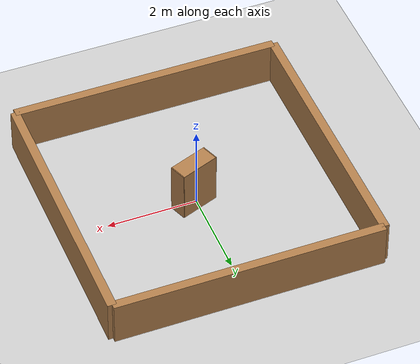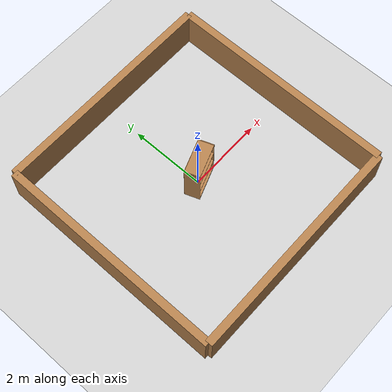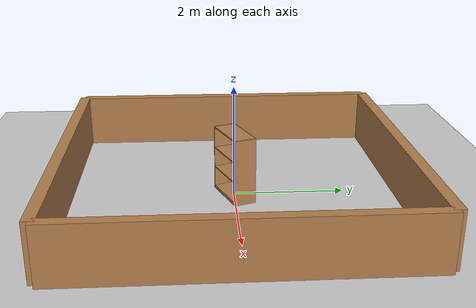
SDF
<sdf version="1.6">
 <world name="default">
  <model name="ground_plane">
   <static>1</static>
   <link name="link">
    <collision name="collision">
     <geometry><plane><normal>0 0 1</normal><size>100 100</size></plane></geometry>
     <surface><friction><ode><mu>100</mu><mu2>50</mu2></ode></friction></surface>
    </collision>
    <visual name="visual">
     <cast_shadows>0</cast_shadows>
     <geometry><plane><normal>0 0 1</normal><size>100 100</size></plane></geometry>
     <material>
      <script><uri>file://media/materials/scripts/gazebo.material</uri><name>Gazebo/Grey</name></script>
     </material>
    </visual>
   </link>
  </model>
  <physics name="default_physics" default="0" type="ode">
   <real_time_update_rate>1000</real_time_update_rate>
   <max_step_size>0.001</max_step_size>
   <real_time_factor>1</real_time_factor>
   <ode>
    <solver>
     <type>quick</type>
     <iters>150</iters>
     <precon_iters>0</precon_iters>
     <sor>1.4</sor>
     <use_dynamic_moi_rescaling>1</use_dynamic_moi_rescaling>
    </solver>
    <constraints>
     <cfm>1e-05</cfm>
     <erp>0.2</erp>
     <contact_max_correcting_vel>2000</contact_max_correcting_vel>
     <contact_surface_layer>0.01</contact_surface_layer>
    </constraints>
   </ode>
  </physics>
  <model name="neng_square">
   <link name="Wall_0">
    <collision name="Wall_0_Collision">
     <geometry><box><size>6 0.2 1</size></box></geometry>
     <pose>0 0 0.5 0 -0 0</pose>
    </collision>
    <visual name="Wall_0_Visual">
     <pose>0 0 0.5 0 -0 0</pose>
     <geometry><box><size>6 0.2 1</size></box></geometry>
     <material>
      <script><uri>file://media/materials/scripts/gazebo.material</uri><name>Gazebo/Wood</name></script>
      <ambient>1 1 1 1</ambient>
     </material>
    </visual>
    <pose>0 3 0 0 -0 0</pose>
   </link>
   <link name="Wall_2">
    <collision name="Wall_2_Collision">
     <geometry><box><size>6 0.2 1</size></box></geometry>
     <pose>0 0 0.5 0 -0 0</pose>
    </collision>
    <visual name="Wall_2_Visual">
     <pose>0 0 0.5 0 -0 0</pose>
     <geometry><box><size>6 0.2 1</size></box></geometry>
     <material>
      <script><uri>file://media/materials/scripts/gazebo.material</uri><name>Gazebo/Wood</name></script>
      <ambient>1 1 1 1</ambient>
     </material>
    </visual>
    <pose>-3 0 0 0 0 -1.5708</pose>
   </link>
   <link name="Wall_3">
    <collision name="Wall_3_Collision">
     <geometry><box><size>6 0.2 1</size></box></geometry>
     <pose>0 0 0.5 0 -0 0</pose>
    </collision>
    <visual name="Wall_3_Visual">
     <pose>0 0 0.5 0 -0 0</pose>
     <geometry><box><size>6 0.2 1</size></box></geometry>
     <material>
      <script><uri>file://media/materials/scripts/gazebo.material</uri><name>Gazebo/Wood</name></script>
      <ambient>1 1 1 1</ambient>
     </material>
    </visual>
    <pose>0 -3 0 0 -0 0</pose>
   </link>
   <link name="Wall_4">
    <collision name="Wall_4_Collision">
     <geometry><box><size>6 0.2 1</size></box></geometry>
     <pose>0 0 0.5 0 -0 0</pose>
    </collision>
    <visual name="Wall_4_Visual">
     <pose>0 0 0.5 0 -0 0</pose>
     <geometry><box><size>6 0.2 1</size></box></geometry>
     <material>
      <script><uri>file://media/materials/scripts/gazebo.material</uri><name>Gazebo/Wood</name></script>
      <ambient>1 1 1 1</ambient>
     </material>
    </visual>
    <pose>3 0 0 0 -0 1.5708</pose>
   </link>
   <static>1</static>
  </model>
  <scene><ambient>0.4 0.4 0.4 1</ambient><background>0.7 0.7 0.7 1</background><shadows>1</shadows></scene>
  <gravity>0 0 -9.8</gravity>
  <magnetic_field>6e-06 2.3e-05 -4.2e-05</magnetic_field>
  <atmosphere type="adiabatic"/>
  <spherical_coordinates>
   <surface_model>EARTH_WGS84</surface_model>
   <latitude_deg>0</latitude_deg>
   <longitude_deg>0</longitude_deg>
   <elevation>0</elevation>
   <heading_deg>0</heading_deg>
  </spherical_coordinates>
  <light name="user_spot_light_0" type="spot">
   <pose>3.05191 2.82041 1 0 -0 0</pose>
   <diffuse>0.5 0.5 0.5 1</diffuse>
   <specular>0.1 0.1 0.1 1</specular>
   <direction>0 0 -1</direction>
   <attenuation>
    <range>20</range>
    <constant>0.5</constant>
    <linear>0.01</linear>
    <quadratic>0.001</quadratic>
   </attenuation>
   <cast_shadows>0</cast_shadows>
   <spot><inner_angle>0.6</inner_angle><outer_angle>1</outer_angle><falloff>1</falloff></spot>
  </light>
  <light name="user_spot_light_1" type="spot">
   <pose>-2.83838 -2.91789 1 0 -0 0</pose>
   <diffuse>0.5 0.5 0.5 1</diffuse>
   <specular>0.1 0.1 0.1 1</specular>
   <direction>0 0 -1</direction>
   <attenuation>
    <range>20</range>
    <constant>0.5</constant>
    <linear>0.01</linear>
    <quadratic>0.001</quadratic>
   </attenuation>
   <cast_shadows>0</cast_shadows>
   <spot><inner_angle>0.6</inner_angle><outer_angle>1</outer_angle><falloff>1</falloff></spot>
  </light>
  <light name="user_spot_light_2" type="spot">
   <pose>3.06733 -3.06317 1 0 -0 0</pose>
   <diffuse>0.5 0.5 0.5 1</diffuse>
   <specular>0.1 0.1 0.1 1</specular>
   <direction>0 0 -1</direction>
   <attenuation>
    <range>20</range>
    <constant>0.5</constant>
    <linear>0.01</linear>
    <quadratic>0.001</quadratic>
   </attenuation>
   <cast_shadows>0</cast_shadows>
   <spot><inner_angle>0.6</inner_angle><outer_angle>1</outer_angle><falloff>1</falloff></spot>
  </light>
  <light name="user_spot_light_3" type="spot">
   <pose>-2.31827 3.06863 1 0 -0 0</pose>
   <diffuse>0.5 0.5 0.5 1</diffuse>
   <specular>0.1 0.1 0.1 1</specular>
   <direction>0 0 -1</direction>
   <attenuation>
    <range>20</range>
    <constant>0.5</constant>
    <linear>0.01</linear>
    <quadratic>0.001</quadratic>
   </attenuation>
   <cast_shadows>0</cast_shadows>
   <spot><inner_angle>0.6</inner_angle><outer_angle>1</outer_angle><falloff>1</falloff></spot>
  </light>
  <model name="bookshelf">
   <static>1</static>
   <link name="link">
    <inertial><mass>1</mass></inertial>
    <collision name="back">
     <pose>0 0.005 0.6 0 -0 0</pose>
     <geometry><box><size>0.9 0.01 1.2</size></box></geometry>
    </collision>
    <visual name="visual1">
     <pose>0 0.005 0.6 0 -0 0</pose>
     <geometry><box><size>0.9 0.01 1.2</size></box></geometry>
     <material>
      <script><uri>file://media/materials/scripts/gazebo.material</uri><name>Gazebo/Wood</name></script>
     </material>
    </visual>
    <collision name="left_side">
     <pose>0.45 -0.195 0.6 0 -0 0</pose>
     <geometry><box><size>0.02 0.4 1.2</size></box></geometry>
    </collision>
    <visual name="visual2">
     <pose>0.45 -0.195 0.6 0 -0 0</pose>
     <geometry><box><size>0.02 0.4 1.2</size></box></geometry>
     <material>
      <script><uri>file://media/materials/scripts/gazebo.material</uri><name>Gazebo/Wood</name></script>
     </material>
    </visual>
    <collision name="right_side">
     <pose>-0.45 -0.195 0.6 0 -0 0</pose>
     <geometry><box><size>0.02 0.4 1.2</size></box></geometry>
    </collision>
    <visual name="visual3">
     <pose>-0.45 -0.195 0.6 0 -0 0</pose>
     <geometry><box><size>0.02 0.4 1.2</size></box></geometry>
     <material>
      <script><uri>file://media/materials/scripts/gazebo.material</uri><name>Gazebo/Wood</name></script>
     </material>
    </visual>
    <collision name="bottom">
     <pose>0 -0.195 0.03 0 -0 0</pose>
     <geometry><box><size>0.88 0.4 0.06</size></box></geometry>
    </collision>
    <visual name="visual4">
     <pose>0 -0.195 0.03 0 -0 0</pose>
     <geometry><box><size>0.88 0.4 0.06</size></box></geometry>
     <material>
      <script><uri>file://media/materials/scripts/gazebo.material</uri><name>Gazebo/Wood</name></script>
     </material>
    </visual>
    <collision name="top">
     <pose>0 -0.195 1.19 0 -0 0</pose>
     <geometry><box><size>0.88 0.4 0.02</size></box></geometry>
    </collision>
    <visual name="visual5">
     <pose>0 -0.195 1.19 0 -0 0</pose>
     <geometry><box><size>0.88 0.4 0.02</size></box></geometry>
     <material>
      <script><uri>file://media/materials/scripts/gazebo.material</uri><name>Gazebo/Wood</name></script>
     </material>
    </visual>
    <collision name="low_shelf">
     <pose>0 -0.195 0.43 0 -0 0</pose>
     <geometry><box><size>0.88 0.4 0.02</size></box></geometry>
    </collision>
    <visual name="visual6">
     <pose>0 -0.195 0.43 0 -0 0</pose>
     <geometry><box><size>0.88 0.4 0.02</size></box></geometry>
     <material>
      <script><uri>file://media/materials/scripts/gazebo.material</uri><name>Gazebo/Wood</name></script>
     </material>
    </visual>
    <collision name="high_shelf">
     <pose>0 -0.195 0.8 0 -0 0</pose>
     <geometry><box><size>0.88 0.4 0.02</size></box></geometry>
    </collision>
    <visual name="visual7">
     <pose>0 -0.195 0.8 0 -0 0</pose>
     <geometry><box><size>0.88 0.4 0.02</size></box></geometry>
     <material>
      <script><uri>file://media/materials/scripts/gazebo.material</uri><name>Gazebo/Wood</name></script>
     </material>
    </visual>
   </link>
   <pose>-0.009229 0.190683 0 0 -0 0.35612</pose>
  </model>
 </world>
</sdf>
